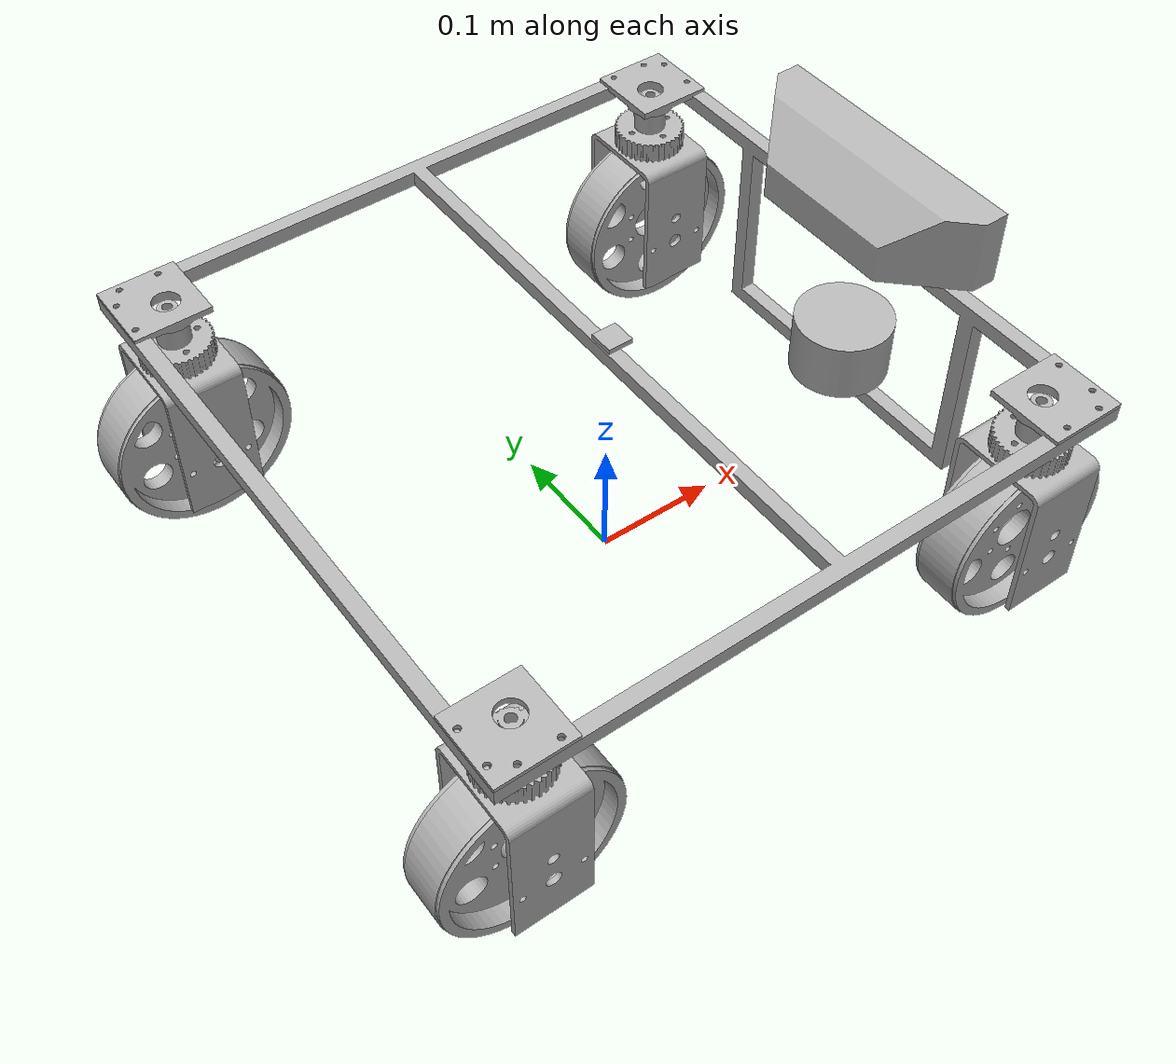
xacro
<?xml version="1.0" ?>
<robot name="chassi_3" xmlns:xacro="http://www.ros.org/wiki/xacro">

<xacro:include filename="$(find chassi_3_description)/urdf/materials.xacro" />
<xacro:include filename="$(find chassi_3_description)/urdf/chassi_3.trans" />
<xacro:include filename="$(find chassi_3_description)/urdf/chassi_3.gazebo" />
<link name="base_link">
  <inertial>
    <origin rpy="0 0 0" xyz="0.07666431934488961 0.0004122311229742803 0.1662937716762844"/>
    <mass value="0.6146064275145914"/>
    <inertia ixx="0.016732" ixy="4.4e-05" ixz="0.003616" iyy="0.019281" iyz="-4.3e-05" izz="0.031698"/>
  </inertial>
  <visual>
    <origin rpy="0 0 0" xyz="0 0 0"/>
    <geometry>
      <mesh filename="package://chassi_3_description/meshes/base_link.stl" scale="0.001 0.001 0.001"/>
    </geometry>
    <material name="silver"/>
  </visual>
  <collision>
    <origin rpy="0 0 0" xyz="0 0 0"/>
    <geometry>
      <mesh filename="package://chassi_3_description/meshes/base_link.stl" scale="0.001 0.001 0.001"/>
    </geometry>
  </collision>
</link>

<link name="Bearing_Housing_Timing_Pulley_3_3">
  <inertial>
    <origin rpy="0 0 0" xyz="-0.026234233040196592 0.012196670309370772 -0.0003397893305714661"/>
    <mass value="0.04341469166020299"/>
    <inertia ixx="1.3e-05" ixy="0.0" ixz="-0.0" iyy="1.3e-05" iyz="0.0" izz="2.4e-05"/>
  </inertial>
  <visual>
    <origin rpy="0 0 0" xyz="-0.232682 0.228609 -0.210005"/>
    <geometry>
      <mesh filename="package://chassi_3_description/meshes/Bearing_Housing_Timing_Pulley_3_3.stl" scale="0.001 0.001 0.001"/>
    </geometry>
    <material name="silver"/>
  </visual>
  <collision>
    <origin rpy="0 0 0" xyz="-0.232682 0.228609 -0.210005"/>
    <geometry>
      <mesh filename="package://chassi_3_description/meshes/Bearing_Housing_Timing_Pulley_3_3.stl" scale="0.001 0.001 0.001"/>
    </geometry>
  </collision>
</link>

<link name="Bearing_Housing_Timing_Pulley_1_1">
  <inertial>
    <origin rpy="0 0 0" xyz="0.02623334470710828 -0.01219764047602151 -0.0003397893305703559"/>
    <mass value="0.04341469166020299"/>
    <inertia ixx="1.3e-05" ixy="0.0" ixz="0.0" iyy="1.3e-05" iyz="-0.0" izz="2.4e-05"/>
  </inertial>
  <visual>
    <origin rpy="0 0 0" xyz="0.255318 -0.231391 -0.210005"/>
    <geometry>
      <mesh filename="package://chassi_3_description/meshes/Bearing_Housing_Timing_Pulley_1_1.stl" scale="0.001 0.001 0.001"/>
    </geometry>
    <material name="silver"/>
  </visual>
  <collision>
    <origin rpy="0 0 0" xyz="0.255318 -0.231391 -0.210005"/>
    <geometry>
      <mesh filename="package://chassi_3_description/meshes/Bearing_Housing_Timing_Pulley_1_1.stl" scale="0.001 0.001 0.001"/>
    </geometry>
  </collision>
</link>

<link name="Bearing_Housing_Timing_Pulley_2_1">
  <inertial>
    <origin rpy="0 0 0" xyz="-0.026197599559218687 -0.017234273956998752 -0.0003397893305703559"/>
    <mass value="0.04341469166020299"/>
    <inertia ixx="1.3e-05" ixy="-0.0" ixz="-0.0" iyy="1.3e-05" iyz="-0.0" izz="2.4e-05"/>
  </inertial>
  <visual>
    <origin rpy="0 0 0" xyz="-0.232682 -0.236391 -0.210005"/>
    <geometry>
      <mesh filename="package://chassi_3_description/meshes/Bearing_Housing_Timing_Pulley_2_1.stl" scale="0.001 0.001 0.001"/>
    </geometry>
    <material name="silver"/>
  </visual>
  <collision>
    <origin rpy="0 0 0" xyz="-0.232682 -0.236391 -0.210005"/>
    <geometry>
      <mesh filename="package://chassi_3_description/meshes/Bearing_Housing_Timing_Pulley_2_1.stl" scale="0.001 0.001 0.001"/>
    </geometry>
  </collision>
</link>

<link name="Bearing_Housing_Timing_Pulley_4_1">
  <inertial>
    <origin rpy="0 0 0" xyz="0.026196711226129765 0.017233303790348098 -0.00033978933057154936"/>
    <mass value="0.04341469166020299"/>
    <inertia ixx="1.3e-05" ixy="-0.0" ixz="0.0" iyy="1.3e-05" iyz="0.0" izz="2.4e-05"/>
  </inertial>
  <visual>
    <origin rpy="0 0 0" xyz="0.255318 0.233609 -0.210005"/>
    <geometry>
      <mesh filename="package://chassi_3_description/meshes/Bearing_Housing_Timing_Pulley_4_1.stl" scale="0.001 0.001 0.001"/>
    </geometry>
    <material name="silver"/>
  </visual>
  <collision>
    <origin rpy="0 0 0" xyz="0.255318 0.233609 -0.210005"/>
    <geometry>
      <mesh filename="package://chassi_3_description/meshes/Bearing_Housing_Timing_Pulley_4_1.stl" scale="0.001 0.001 0.001"/>
    </geometry>
  </collision>
</link>

<link name="Timing_Pulley_1_1">
  <inertial>
    <origin rpy="0 0 0" xyz="-1.3941310927634287e-06 -2.937429852911677e-06 -0.03332178298448235"/>
    <mass value="0.12675887698218385"/>
    <inertia ixx="3.2e-05" ixy="-0.0" ixz="0.0" iyy="3.2e-05" iyz="0.0" izz="3.8e-05"/>
  </inertial>
  <visual>
    <origin rpy="0 0 0" xyz="0.225318 -0.215391 -0.208005"/>
    <geometry>
      <mesh filename="package://chassi_3_description/meshes/Timing_Pulley_1_1.stl" scale="0.001 0.001 0.001"/>
    </geometry>
    <material name="silver"/>
  </visual>
  <collision>
    <origin rpy="0 0 0" xyz="0.225318 -0.215391 -0.208005"/>
    <geometry>
      <mesh filename="package://chassi_3_description/meshes/Timing_Pulley_1_1.stl" scale="0.001 0.001 0.001"/>
    </geometry>
  </collision>
</link>

<link name="Timing_Pulley_2_1">
  <inertial>
    <origin rpy="0 0 0" xyz="-1.3941310942344742e-06 -2.9374298528839216e-06 -0.033321782984482406"/>
    <mass value="0.12675887698218385"/>
    <inertia ixx="3.2e-05" ixy="-0.0" ixz="0.0" iyy="3.2e-05" iyz="0.0" izz="3.8e-05"/>
  </inertial>
  <visual>
    <origin rpy="0 0 0" xyz="-0.202682 -0.215391 -0.208005"/>
    <geometry>
      <mesh filename="package://chassi_3_description/meshes/Timing_Pulley_2_1.stl" scale="0.001 0.001 0.001"/>
    </geometry>
    <material name="silver"/>
  </visual>
  <collision>
    <origin rpy="0 0 0" xyz="-0.202682 -0.215391 -0.208005"/>
    <geometry>
      <mesh filename="package://chassi_3_description/meshes/Timing_Pulley_2_1.stl" scale="0.001 0.001 0.001"/>
    </geometry>
  </collision>
</link>

<link name="Timing_Pulley_3_1">
  <inertial>
    <origin rpy="0 0 0" xyz="-1.394131094900608e-06 -2.9374298088080675e-06 -0.03332178298448343"/>
    <mass value="0.12675887698218385"/>
    <inertia ixx="3.2e-05" ixy="-0.0" ixz="0.0" iyy="3.2e-05" iyz="0.0" izz="3.8e-05"/>
  </inertial>
  <visual>
    <origin rpy="0 0 0" xyz="-0.202682 0.212609 -0.208005"/>
    <geometry>
      <mesh filename="package://chassi_3_description/meshes/Timing_Pulley_3_1.stl" scale="0.001 0.001 0.001"/>
    </geometry>
    <material name="silver"/>
  </visual>
  <collision>
    <origin rpy="0 0 0" xyz="-0.202682 0.212609 -0.208005"/>
    <geometry>
      <mesh filename="package://chassi_3_description/meshes/Timing_Pulley_3_1.stl" scale="0.001 0.001 0.001"/>
    </geometry>
  </collision>
</link>

<link name="C_Plate_Wheel_4_1">
  <inertial>
    <origin rpy="0 0 0" xyz="-4.44166526336609e-07 -0.0006993240394426448 -0.04560776005952995"/>
    <mass value="0.18592534486192586"/>
    <inertia ixx="0.000486" ixy="-0.0" ixz="0.0" iyy="0.000332" iyz="-5e-06" izz="0.00027"/>
  </inertial>
  <visual>
    <origin rpy="0 0 0" xyz="0.225318 0.212609 -0.162005"/>
    <geometry>
      <mesh filename="package://chassi_3_description/meshes/C_Plate_Wheel_4_1.stl" scale="0.001 0.001 0.001"/>
    </geometry>
    <material name="silver"/>
  </visual>
  <collision>
    <origin rpy="0 0 0" xyz="0.225318 0.212609 -0.162005"/>
    <geometry>
      <mesh filename="package://chassi_3_description/meshes/C_Plate_Wheel_4_1.stl" scale="0.001 0.001 0.001"/>
    </geometry>
  </collision>
</link>

<link name="Wheel__4_1">
  <inertial>
    <origin rpy="0 0 0" xyz="-4.441665880372536e-07 0.005999514916682214 -1.6730361050709686e-07"/>
    <mass value="0.17476968958442823"/>
    <inertia ixx="0.000264" ixy="0.0" ixz="0.0" iyy="0.000505" iyz="0.0" izz="0.000264"/>
  </inertial>
  <visual>
    <origin rpy="0 0 0" xyz="0.225318 0.217609 -0.083005"/>
    <geometry>
      <mesh filename="package://chassi_3_description/meshes/Wheel__4_1.stl" scale="0.001 0.001 0.001"/>
    </geometry>
    <material name="silver"/>
  </visual>
  <collision>
    <origin rpy="0 0 0" xyz="0.225318 0.217609 -0.083005"/>
    <geometry>
      <mesh filename="package://chassi_3_description/meshes/Wheel__4_1.stl" scale="0.001 0.001 0.001"/>
    </geometry>
  </collision>
</link>

<link name="Timing_Pulley_4_1">
  <inertial>
    <origin rpy="0 0 0" xyz="-1.3941310945397856e-06 -2.9374298087248008e-06 -0.03332178298448352"/>
    <mass value="0.12675887698218385"/>
    <inertia ixx="3.2e-05" ixy="-0.0" ixz="0.0" iyy="3.2e-05" iyz="0.0" izz="3.8e-05"/>
  </inertial>
  <visual>
    <origin rpy="0 0 0" xyz="0.225318 0.212609 -0.208005"/>
    <geometry>
      <mesh filename="package://chassi_3_description/meshes/Timing_Pulley_4_1.stl" scale="0.001 0.001 0.001"/>
    </geometry>
    <material name="silver"/>
  </visual>
  <collision>
    <origin rpy="0 0 0" xyz="0.225318 0.212609 -0.208005"/>
    <geometry>
      <mesh filename="package://chassi_3_description/meshes/Timing_Pulley_4_1.stl" scale="0.001 0.001 0.001"/>
    </geometry>
  </collision>
</link>

<link name="C_Plate_Wheel_3_1">
  <inertial>
    <origin rpy="0 0 0" xyz="-4.441665271692763e-07 -0.000699324039442506 -0.04560776005952995"/>
    <mass value="0.18592534486192586"/>
    <inertia ixx="0.000486" ixy="-0.0" ixz="0.0" iyy="0.000332" iyz="-5e-06" izz="0.00027"/>
  </inertial>
  <visual>
    <origin rpy="0 0 0" xyz="-0.202682 0.212609 -0.162005"/>
    <geometry>
      <mesh filename="package://chassi_3_description/meshes/C_Plate_Wheel_3_1.stl" scale="0.001 0.001 0.001"/>
    </geometry>
    <material name="silver"/>
  </visual>
  <collision>
    <origin rpy="0 0 0" xyz="-0.202682 0.212609 -0.162005"/>
    <geometry>
      <mesh filename="package://chassi_3_description/meshes/C_Plate_Wheel_3_1.stl" scale="0.001 0.001 0.001"/>
    </geometry>
  </collision>
</link>

<link name="C_Plate_Wheel_2_1">
  <inertial>
    <origin rpy="0 0 0" xyz="-4.441665265031425e-07 -0.0006993240394865818 -0.045607760059528754"/>
    <mass value="0.18592534486192586"/>
    <inertia ixx="0.000486" ixy="-0.0" ixz="0.0" iyy="0.000332" iyz="-5e-06" izz="0.00027"/>
  </inertial>
  <visual>
    <origin rpy="0 0 0" xyz="-0.202682 -0.215391 -0.162005"/>
    <geometry>
      <mesh filename="package://chassi_3_description/meshes/C_Plate_Wheel_2_1.stl" scale="0.001 0.001 0.001"/>
    </geometry>
    <material name="silver"/>
  </visual>
  <collision>
    <origin rpy="0 0 0" xyz="-0.202682 -0.215391 -0.162005"/>
    <geometry>
      <mesh filename="package://chassi_3_description/meshes/C_Plate_Wheel_2_1.stl" scale="0.001 0.001 0.001"/>
    </geometry>
  </collision>
</link>

<link name="C_Plate_Wheel_1_1">
  <inertial>
    <origin rpy="0 0 0" xyz="-4.441665251153637e-07 -0.0006993240394864708 -0.045607760059528824"/>
    <mass value="0.18592534486192586"/>
    <inertia ixx="0.000486" ixy="-0.0" ixz="0.0" iyy="0.000332" iyz="-5e-06" izz="0.00027"/>
  </inertial>
  <visual>
    <origin rpy="0 0 0" xyz="0.225318 -0.215391 -0.162005"/>
    <geometry>
      <mesh filename="package://chassi_3_description/meshes/C_Plate_Wheel_1_1.stl" scale="0.001 0.001 0.001"/>
    </geometry>
    <material name="silver"/>
  </visual>
  <collision>
    <origin rpy="0 0 0" xyz="0.225318 -0.215391 -0.162005"/>
    <geometry>
      <mesh filename="package://chassi_3_description/meshes/C_Plate_Wheel_1_1.stl" scale="0.001 0.001 0.001"/>
    </geometry>
  </collision>
</link>

<link name="Wheel__3_1">
  <inertial>
    <origin rpy="0 0 0" xyz="-4.4416658870338743e-07 0.005999514916696813 -1.673036104654635e-07"/>
    <mass value="0.17476968958442823"/>
    <inertia ixx="0.000264" ixy="0.0" ixz="0.0" iyy="0.000505" iyz="0.0" izz="0.000264"/>
  </inertial>
  <visual>
    <origin rpy="0 0 0" xyz="-0.202682 0.217609 -0.083005"/>
    <geometry>
      <mesh filename="package://chassi_3_description/meshes/Wheel__3_1.stl" scale="0.001 0.001 0.001"/>
    </geometry>
    <material name="silver"/>
  </visual>
  <collision>
    <origin rpy="0 0 0" xyz="-0.202682 0.217609 -0.083005"/>
    <geometry>
      <mesh filename="package://chassi_3_description/meshes/Wheel__3_1.stl" scale="0.001 0.001 0.001"/>
    </geometry>
  </collision>
</link>

<link name="Wheel__2_1">
  <inertial>
    <origin rpy="0 0 0" xyz="-4.4416658809276477e-07 0.005999514916652848 -1.6730360925809595e-07"/>
    <mass value="0.17476968958442823"/>
    <inertia ixx="0.000264" ixy="0.0" ixz="0.0" iyy="0.000505" iyz="0.0" izz="0.000264"/>
  </inertial>
  <visual>
    <origin rpy="0 0 0" xyz="-0.202682 -0.210391 -0.083005"/>
    <geometry>
      <mesh filename="package://chassi_3_description/meshes/Wheel__2_1.stl" scale="0.001 0.001 0.001"/>
    </geometry>
    <material name="silver"/>
  </visual>
  <collision>
    <origin rpy="0 0 0" xyz="-0.202682 -0.210391 -0.083005"/>
    <geometry>
      <mesh filename="package://chassi_3_description/meshes/Wheel__2_1.stl" scale="0.001 0.001 0.001"/>
    </geometry>
  </collision>
</link>

<link name="Wheel__1_1">
  <inertial>
    <origin rpy="0 0 0" xyz="-4.441665864829414e-07 0.005999514916652959 -1.673036093274849e-07"/>
    <mass value="0.17476968958442823"/>
    <inertia ixx="0.000264" ixy="0.0" ixz="0.0" iyy="0.000505" iyz="0.0" izz="0.000264"/>
  </inertial>
  <visual>
    <origin rpy="0 0 0" xyz="0.225318 -0.210391 -0.083005"/>
    <geometry>
      <mesh filename="package://chassi_3_description/meshes/Wheel__1_1.stl" scale="0.001 0.001 0.001"/>
    </geometry>
    <material name="silver"/>
  </visual>
  <collision>
    <origin rpy="0 0 0" xyz="0.225318 -0.210391 -0.083005"/>
    <geometry>
      <mesh filename="package://chassi_3_description/meshes/Wheel__1_1.stl" scale="0.001 0.001 0.001"/>
    </geometry>
  </collision>
</link>

<link name="laser_sensor_1">
  <inertial>
    <origin rpy="0 0 0" xyz="-4.4416653463552613e-07 -1.8085234254855247e-07 0.024999832696389265"/>
    <mass value="0.2664070570244145"/>
    <inertia ixx="0.000162" ixy="-0.0" ixz="-0.0" iyy="0.000162" iyz="-0.0" izz="0.000213"/>
  </inertial>
  <visual>
    <origin rpy="0 0 0" xyz="-0.232682 -0.000924 -0.060005"/>
    <geometry>
      <mesh filename="package://chassi_3_description/meshes/laser_sensor_1.stl" scale="0.001 0.001 0.001"/>
    </geometry>
    <material name="silver"/>
  </visual>
  <collision>
    <origin rpy="0 0 0" xyz="-0.232682 -0.000924 -0.060005"/>
    <geometry>
      <mesh filename="package://chassi_3_description/meshes/laser_sensor_1.stl" scale="0.001 0.001 0.001"/>
    </geometry>
  </collision>
</link>

<link name="kinect_sensor_1">
  <inertial>
    <origin rpy="0 0 0" xyz="0.006080179739104075 -3.3591612324983602e-06 0.028194586246962333"/>
    <mass value="0.7552209784775847"/>
    <inertia ixx="0.002646" ixy="0.0" ixz="-3.9e-05" iyy="0.000468" iyz="-0.0" izz="0.002689"/>
  </inertial>
  <visual>
    <origin rpy="0 0 0" xyz="-0.226682 -0.001391 -0.210005"/>
    <geometry>
      <mesh filename="package://chassi_3_description/meshes/kinect_sensor_1.stl" scale="0.001 0.001 0.001"/>
    </geometry>
    <material name="silver"/>
  </visual>
  <collision>
    <origin rpy="0 0 0" xyz="-0.226682 -0.001391 -0.210005"/>
    <geometry>
      <mesh filename="package://chassi_3_description/meshes/kinect_sensor_1.stl" scale="0.001 0.001 0.001"/>
    </geometry>
  </collision>
</link>

<link name="camera_frame_optical"/>

<joint name="camera_optical_joint" type="fixed">
    <origin xyz="0 0 0" rpy="-1.5708 0 -1.5708"/>
    <parent link="kinect_sensor_1"/>
    <child link="camera_frame_optical"/>
</joint>

<link name="Wheel_Rubber_3_1">
  <inertial>
    <origin rpy="0 0 0" xyz="-4.441665451548893e-07 0.016999514916696795 -1.673036119226312e-07"/>
    <mass value="0.06804595439895893"/>
    <inertia ixx="0.000166" ixy="0.0" ixz="-0.0" iyy="0.00032" iyz="0.0" izz="0.000166"/>
  </inertial>
  <visual>
    <origin rpy="0 0 0" xyz="-0.202682 0.228609 -0.083005"/>
    <geometry>
      <mesh filename="package://chassi_3_description/meshes/Wheel_Rubber_3_1.stl" scale="0.001 0.001 0.001"/>
    </geometry>
    <material name="silver"/>
  </visual>
  <collision>
    <origin rpy="0 0 0" xyz="-0.202682 0.228609 -0.083005"/>
    <geometry>
      <mesh filename="package://chassi_3_description/meshes/Wheel_Rubber_3_1.stl" scale="0.001 0.001 0.001"/>
    </geometry>
  </collision>
</link>

<link name="Wheel_Rubber_2_1">
  <inertial>
    <origin rpy="0 0 0" xyz="-4.4416654454426663e-07 0.01699951491665272 -1.6730361065975252e-07"/>
    <mass value="0.06804595439895893"/>
    <inertia ixx="0.000166" ixy="0.0" ixz="-0.0" iyy="0.00032" iyz="0.0" izz="0.000166"/>
  </inertial>
  <visual>
    <origin rpy="0 0 0" xyz="-0.202682 -0.199391 -0.083005"/>
    <geometry>
      <mesh filename="package://chassi_3_description/meshes/Wheel_Rubber_2_1.stl" scale="0.001 0.001 0.001"/>
    </geometry>
    <material name="silver"/>
  </visual>
  <collision>
    <origin rpy="0 0 0" xyz="-0.202682 -0.199391 -0.083005"/>
    <geometry>
      <mesh filename="package://chassi_3_description/meshes/Wheel_Rubber_2_1.stl" scale="0.001 0.001 0.001"/>
    </geometry>
  </collision>
</link>

<link name="Wheel_Rubber_4_1">
  <inertial>
    <origin rpy="0 0 0" xyz="-4.4416654426671087e-07 0.016999514916682112 -1.6730361196426458e-07"/>
    <mass value="0.06804595439895893"/>
    <inertia ixx="0.000166" ixy="0.0" ixz="-0.0" iyy="0.00032" iyz="0.0" izz="0.000166"/>
  </inertial>
  <visual>
    <origin rpy="0 0 0" xyz="0.225318 0.228609 -0.083005"/>
    <geometry>
      <mesh filename="package://chassi_3_description/meshes/Wheel_Rubber_4_1.stl" scale="0.001 0.001 0.001"/>
    </geometry>
    <material name="silver"/>
  </visual>
  <collision>
    <origin rpy="0 0 0" xyz="0.225318 0.228609 -0.083005"/>
    <geometry>
      <mesh filename="package://chassi_3_description/meshes/Wheel_Rubber_4_1.stl" scale="0.001 0.001 0.001"/>
    </geometry>
  </collision>
</link>

<link name="Wheel_Rubber_1_1">
  <inertial>
    <origin rpy="0 0 0" xyz="-4.4416654290668767e-07 0.01699951491665283 -1.6730361077077482e-07"/>
    <mass value="0.008780123148252765"/>
    <inertia ixx="2.1e-05" ixy="0.0" ixz="-0.0" iyy="4.1e-05" iyz="0.0" izz="2.1e-05"/>
  </inertial>
  <visual>
    <origin rpy="0 0 0" xyz="0.225318 -0.199391 -0.083005"/>
    <geometry>
      <mesh filename="package://chassi_3_description/meshes/Wheel_Rubber_1_1.stl" scale="0.001 0.001 0.001"/>
    </geometry>
    <material name="silver"/>
  </visual>
  <collision>
    <origin rpy="0 0 0" xyz="0.225318 -0.199391 -0.083005"/>
    <geometry>
      <mesh filename="package://chassi_3_description/meshes/Wheel_Rubber_1_1.stl" scale="0.001 0.001 0.001"/>
    </geometry>
  </collision>
</link>

<link name="rangefinder_1">
  <inertial>
    <origin rpy="0 0 0" xyz="0.003525329280092554 -0.00011221164505903502 -1.2687316620421663e-06"/>
    <mass value="0.002162113693933333"/>
    <inertia ixx="0.0" ixy="0.0" ixz="0.0" iyy="0.0" iyz="-0.0" izz="0.0"/>
  </inertial>
  <visual>
    <origin rpy="0 0 0" xyz="-0.238682 -0.000374 -0.048005"/>
    <geometry>
      <mesh filename="package://chassi_3_description/meshes/rangefinder_1.stl" scale="0.001 0.001 0.001"/>
    </geometry>
    <material name="silver"/>
  </visual>
  <collision>
    <origin rpy="0 0 0" xyz="-0.238682 -0.000374 -0.048005"/>
    <geometry>
      <mesh filename="package://chassi_3_description/meshes/rangefinder_1.stl" scale="0.001 0.001 0.001"/>
    </geometry>
  </collision>
</link>

<link name="imu_1">
  <inertial>
    <origin rpy="0 0 0" xyz="7.602336587336778e-08 -4.850832910218046e-07 0.001999832696388759"/>
    <mass value="0.001695999999999994"/>
    <inertia ixx="0.0" ixy="0.0" ixz="0.0" iyy="0.0" iyz="-0.0" izz="0.0"/>
  </inertial>
  <visual>
    <origin rpy="0 0 0" xyz="-0.00527 -0.001391 -0.210005"/>
    <geometry>
      <mesh filename="package://chassi_3_description/meshes/imu_1.stl" scale="0.001 0.001 0.001"/>
    </geometry>
    <material name="silver"/>
  </visual>
  <collision>
    <origin rpy="0 0 0" xyz="-0.00527 -0.001391 -0.210005"/>
    <geometry>
      <mesh filename="package://chassi_3_description/meshes/imu_1.stl" scale="0.001 0.001 0.001"/>
    </geometry>
  </collision>
</link>

<link name="imu_frame_optical"/>

<joint name="imu_optical_joint" type="fixed">
    <origin xyz="0 0 0" rpy="-1.5708 0 -1.5708"/>
    <parent link="imu_1"/>
    <child link="imu_frame_optical"/>
</joint>

<joint name="Rigid5" type="fixed">
  <origin rpy="0 0 0" xyz="0.232682 -0.228609 0.210005"/>
  <parent link="base_link"/>
  <child link="Bearing_Housing_Timing_Pulley_3_3"/>
</joint>

<joint name="Rigid7" type="fixed">
  <origin rpy="0 0 0" xyz="-0.255318 0.231391 0.210005"/>
  <parent link="base_link"/>
  <child link="Bearing_Housing_Timing_Pulley_1_1"/>
</joint>

<joint name="Rigid8" type="fixed">
  <origin rpy="0 0 0" xyz="0.232682 0.236391 0.210005"/>
  <parent link="base_link"/>
  <child link="Bearing_Housing_Timing_Pulley_2_1"/>
</joint>

<joint name="Rigid9" type="fixed">
  <origin rpy="0 0 0" xyz="-0.255318 -0.233609 0.210005"/>
  <parent link="base_link"/>
  <child link="Bearing_Housing_Timing_Pulley_4_1"/>
</joint>

<joint name="Rigid10" type="fixed">
  <origin rpy="0 0 0" xyz="0.03 -0.016 -0.002"/>
  <parent link="Bearing_Housing_Timing_Pulley_1_1"/>
  <child link="Timing_Pulley_1_1"/>
</joint>

<joint name="Rigid11" type="fixed">
  <origin rpy="0 0 0" xyz="-0.03 -0.021 -0.002"/>
  <parent link="Bearing_Housing_Timing_Pulley_2_1"/>
  <child link="Timing_Pulley_2_1"/>
</joint>

<joint name="Rigid12" type="fixed">
  <origin rpy="0 0 0" xyz="-0.03 0.016 -0.002"/>
  <parent link="Bearing_Housing_Timing_Pulley_3_3"/>
  <child link="Timing_Pulley_3_1"/>
</joint>

<joint name="Rigid4" type="fixed">
  <origin rpy="0 0 0" xyz="0.0 0.0 -0.046"/>
  <parent link="Timing_Pulley_4_1"/>
  <child link="C_Plate_Wheel_4_1"/>
</joint>

<joint name="Rev3" type="continuous">
  <origin rpy="0 0 0" xyz="0.0 -0.005 -0.079"/>
  <parent link="C_Plate_Wheel_4_1"/>
  <child link="Wheel__4_1"/>
  <axis xyz="0.0 1.0 0.0"/>
</joint>

<joint name="Rigid13" type="fixed">
  <origin rpy="0 0 0" xyz="0.03 0.021 -0.002"/>
  <parent link="Bearing_Housing_Timing_Pulley_4_1"/>
  <child link="Timing_Pulley_4_1"/>
</joint>

<joint name="Rigid15" type="fixed">
  <origin rpy="0 0 0" xyz="0.0 0.0 -0.046"/>
  <parent link="Timing_Pulley_3_1"/>
  <child link="C_Plate_Wheel_3_1"/>
</joint>

<joint name="Rigid16" type="fixed">
  <origin rpy="0 0 0" xyz="0.0 0.0 -0.046"/>
  <parent link="Timing_Pulley_2_1"/>
  <child link="C_Plate_Wheel_2_1"/>
</joint>

<joint name="Rigid17" type="fixed">
  <origin rpy="0 0 0" xyz="0.0 0.0 -0.046"/>
  <parent link="Timing_Pulley_1_1"/>
  <child link="C_Plate_Wheel_1_1"/>
</joint>

<joint name="Rev18" type="continuous">
  <origin rpy="0 0 0" xyz="0.0 -0.005 -0.079"/>
  <parent link="C_Plate_Wheel_3_1"/>
  <child link="Wheel__3_1"/>
  <axis xyz="0.0 1.0 0.0"/>
</joint>

<joint name="Rev19" type="continuous">
  <origin rpy="0 0 0" xyz="0.0 -0.005 -0.079"/>
  <parent link="C_Plate_Wheel_2_1"/>
  <child link="Wheel__2_1"/>
  <axis xyz="0.0 1.0 0.0"/>
</joint>

<joint name="Rev20" type="continuous">
  <origin rpy="0 0 0" xyz="0.0 -0.005 -0.079"/>
  <parent link="C_Plate_Wheel_1_1"/>
  <child link="Wheel__1_1"/>
  <axis xyz="0.0 1.0 0.0"/>
</joint>

<joint name="Rigid21" type="fixed">
  <origin rpy="0 0 0" xyz="0.232682 0.000924 0.060005"/>
  <parent link="base_link"/>
  <child link="laser_sensor_1"/>
</joint>

<joint name="Rigid22" type="fixed">
  <origin rpy="0 0 0" xyz="0.226682 0.001391 0.210005"/>
  <parent link="base_link"/>
  <child link="kinect_sensor_1"/>
</joint>

<joint name="Rigid23" type="fixed">
  <origin rpy="0 0 0" xyz="0.0 -0.011 0.0"/>
  <parent link="Wheel__3_1"/>
  <child link="Wheel_Rubber_3_1"/>
</joint>

<joint name="Rigid24" type="fixed">
  <origin rpy="0 0 0" xyz="0.0 -0.011 0.0"/>
  <parent link="Wheel__2_1"/>
  <child link="Wheel_Rubber_2_1"/>
</joint>

<joint name="Rigid25" type="fixed">
  <origin rpy="0 0 0" xyz="0.0 -0.011 0.0"/>
  <parent link="Wheel__4_1"/>
  <child link="Wheel_Rubber_4_1"/>
</joint>

<joint name="Rigid26" type="fixed">
  <origin rpy="0 0 0" xyz="0.0 -0.011 0.0"/>
  <parent link="Wheel__1_1"/>
  <child link="Wheel_Rubber_1_1"/>
</joint>

<joint name="Rigid27" type="fixed">
  <origin rpy="0 0 0" xyz="0.238682 0.000374 0.048005"/>
  <parent link="base_link"/>
  <child link="rangefinder_1"/>
</joint>

<joint name="Rigid28" type="fixed">
  <origin rpy="0 0 0" xyz="0.00527 0.001391 0.210005"/>
  <parent link="base_link"/>
  <child link="imu_1"/>
</joint>

</robot>

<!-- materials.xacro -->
<robot name="chassi_3" xmlns:xacro="http://www.ros.org/wiki/xacro" >

<material name="silver">
  <color rgba="0.700 0.700 0.700 1.000"/>
</material>

</robot>
